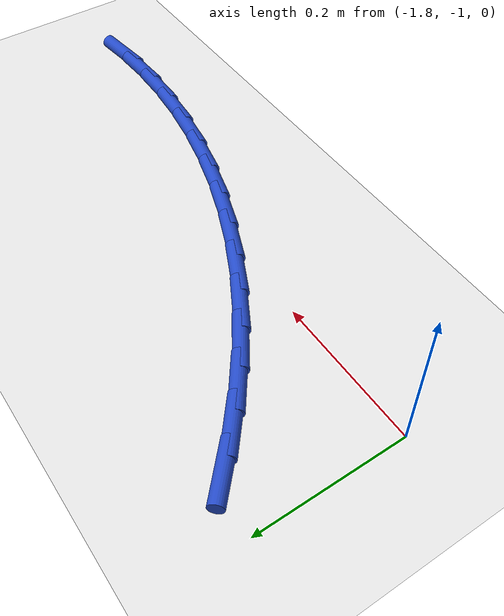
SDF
<sdf version="1.6">
 <world name="default">
  <model name="ground_plane">
   <static>1</static>
   <link name="link">
    <collision name="collision">
     <geometry><plane><normal>0 0 1</normal><size>100 100</size></plane></geometry>
     <surface><friction><ode><mu>100</mu><mu2>50</mu2></ode></friction></surface>
    </collision>
    <visual name="visual">
     <cast_shadows>0</cast_shadows>
     <geometry><plane><normal>0 0 1</normal><size>100 100</size></plane></geometry>
     <material>
      <script><uri>file://media/materials/scripts/gazebo.material</uri><name>Gazebo/WhiteGlow</name></script>
     </material>
    </visual>
   </link>
  </model>
  <model name="line">
   <link name="link_76">
    <pose>-1.7316467337910393 -0.8131080502933558 0.01 0 1.57 -0.7647453448198399</pose>
    <collision name="collision">
     <geometry><cylinder><radius>0.01</radius><length>0.08</length></cylinder></geometry>
    </collision>
    <visual name="visual">
     <material>
      <script><name>Gazebo/Blue</name><uri>file://media/materials/scripts/gazebo.material</uri></script>
     </material>
     <geometry><cylinder><radius>0.01</radius><length>0.08</length></cylinder></geometry>
    </visual>
   </link>
   <link name="link_77">
    <pose>-1.6921844889233182 -0.8509730426562047 0.01 0 1.57 -0.7081240541571656</pose>
    <collision name="collision">
     <geometry><cylinder><radius>0.01</radius><length>0.08</length></cylinder></geometry>
    </collision>
    <visual name="visual">
     <material>
      <script><name>Gazebo/Blue</name><uri>file://media/materials/scripts/gazebo.material</uri></script>
     </material>
     <geometry><cylinder><radius>0.01</radius><length>0.08</length></cylinder></geometry>
    </visual>
   </link>
   <link name="link_78">
    <pose>-1.650654899984337 -0.8865336683933145 0.01 0 1.57 -0.649937392157212</pose>
    <collision name="collision">
     <geometry><cylinder><radius>0.01</radius><length>0.08</length></cylinder></geometry>
    </collision>
    <visual name="visual">
     <material>
      <script><name>Gazebo/Blue</name><uri>file://media/materials/scripts/gazebo.material</uri></script>
     </material>
     <geometry><cylinder><radius>0.01</radius><length>0.08</length></cylinder></geometry>
    </visual>
   </link>
   <link name="link_79">
    <pose>-1.6071314505355125 -0.919616086670821 0.01 0 1.57 -0.5900486102123151</pose>
    <collision name="collision">
     <geometry><cylinder><radius>0.01</radius><length>0.08</length></cylinder></geometry>
    </collision>
    <visual name="visual">
     <material>
      <script><name>Gazebo/Blue</name><uri>file://media/materials/scripts/gazebo.material</uri></script>
     </material>
     <geometry><cylinder><radius>0.01</radius><length>0.08</length></cylinder></geometry>
    </visual>
   </link>
   <link name="link_80">
    <pose>-1.56168762413826 -0.9500464566548606 0.01 0 1.57 -0.5283854800156103</pose>
    <collision name="collision">
     <geometry><cylinder><radius>0.01</radius><length>0.08</length></cylinder></geometry>
    </collision>
    <visual name="visual">
     <material>
      <script><name>Gazebo/Blue</name><uri>file://media/materials/scripts/gazebo.material</uri></script>
     </material>
     <geometry><cylinder><radius>0.01</radius><length>0.08</length></cylinder></geometry>
    </visual>
   </link>
   <link name="link_81">
    <pose>-1.5143983721379017 -0.9776515706433535 0.01 0 1.57 -0.4659485215275925</pose>
    <collision name="collision">
     <geometry><cylinder><radius>0.01</radius><length>0.08</length></cylinder></geometry>
    </collision>
    <visual name="visual">
     <material>
      <script><name>Gazebo/Blue</name><uri>file://media/materials/scripts/gazebo.material</uri></script>
     </material>
     <geometry><cylinder><radius>0.01</radius><length>0.08</length></cylinder></geometry>
    </visual>
   </link>
   <link name="link_82">
    <pose>-1.4654076633248698 -1.0022879917593992 0.01 0 1.57 -0.4039606254554403</pose>
    <collision name="collision">
     <geometry><cylinder><radius>0.01</radius><length>0.08</length></cylinder></geometry>
    </collision>
    <visual name="visual">
     <material>
      <script><name>Gazebo/Blue</name><uri>file://media/materials/scripts/gazebo.material</uri></script>
     </material>
     <geometry><cylinder><radius>0.01</radius><length>0.08</length></cylinder></geometry>
    </visual>
   </link>
   <link name="link_83">
    <pose>-1.4149567276796615 -1.0238542369521464 0.01 0 1.57 -0.3421106340709524</pose>
    <collision name="collision">
     <geometry><cylinder><radius>0.01</radius><length>0.08</length></cylinder></geometry>
    </collision>
    <visual name="visual">
     <material>
      <script><name>Gazebo/Blue</name><uri>file://media/materials/scripts/gazebo.material</uri></script>
     </material>
     <geometry><cylinder><radius>0.01</radius><length>0.08</length></cylinder></geometry>
    </visual>
   </link>
   <link name="link_84">
    <pose>-1.3632941209205331 -1.0422519831436718 0.01 0 1.57 -0.2799678826781423</pose>
    <collision name="collision">
     <geometry><cylinder><radius>0.01</radius><length>0.08</length></cylinder></geometry>
    </collision>
    <visual name="visual">
     <material>
      <script><name>Gazebo/Blue</name><uri>file://media/materials/scripts/gazebo.material</uri></script>
     </material>
     <geometry><cylinder><radius>0.01</radius><length>0.08</length></cylinder></geometry>
    </visual>
   </link>
   <link name="link_85">
    <pose>-1.3106683987657393 -1.0573829072560523 0.01 0 1.57 -0.2171030966495569</pose>
    <collision name="collision">
     <geometry><cylinder><radius>0.01</radius><length>0.08</length></cylinder></geometry>
    </collision>
    <visual name="visual">
     <material>
      <script><name>Gazebo/Blue</name><uri>file://media/materials/scripts/gazebo.material</uri></script>
     </material>
     <geometry><cylinder><radius>0.01</radius><length>0.08</length></cylinder></geometry>
    </visual>
   </link>
   <link name="link_86">
    <pose>-1.257328116933538 -1.0691486862113635 0.01 0 1.57 -0.1530926656639152</pose>
    <collision name="collision">
     <geometry><cylinder><radius>0.01</radius><length>0.08</length></cylinder></geometry>
    </collision>
    <visual name="visual">
     <material>
      <script><name>Gazebo/Blue</name><uri>file://media/materials/scripts/gazebo.material</uri></script>
     </material>
     <geometry><cylinder><radius>0.01</radius><length>0.08</length></cylinder></geometry>
    </visual>
   </link>
   <link name="link_87">
    <pose>-1.2035218311421836 -1.0774509969316828 0.01 0 1.57 -0.08752464613146398</pose>
    <collision name="collision">
     <geometry><cylinder><radius>0.01</radius><length>0.08</length></cylinder></geometry>
    </collision>
    <visual name="visual">
     <material>
      <script><name>Gazebo/Blue</name><uri>file://media/materials/scripts/gazebo.material</uri></script>
     </material>
     <geometry><cylinder><radius>0.01</radius><length>0.08</length></cylinder></geometry>
    </visual>
   </link>
   <link name="link_88">
    <pose>-1.1494980971099331 -1.082191516339086 0.01 0 1.57 -0.020007562489210155</pose>
    <collision name="collision">
     <geometry><cylinder><radius>0.01</radius><length>0.08</length></cylinder></geometry>
    </collision>
    <visual name="visual">
     <material>
      <script><name>Gazebo/Blue</name><uri>file://media/materials/scripts/gazebo.material</uri></script>
     </material>
     <geometry><cylinder><radius>0.01</radius><length>0.08</length></cylinder></geometry>
    </visual>
   </link>
   <link name="link_89">
    <pose>-1.095505470555041 -1.0832719213556505 0.01 0 1.57 0.049508144726397724</pose>
    <collision name="collision">
     <geometry><cylinder><radius>0.01</radius><length>0.08</length></cylinder></geometry>
    </collision>
    <visual name="visual">
     <material>
      <script><name>Gazebo/Blue</name><uri>file://media/materials/scripts/gazebo.material</uri></script>
     </material>
     <geometry><cylinder><radius>0.01</radius><length>0.08</length></cylinder></geometry>
    </visual>
   </link>
   <link name="link_90">
    <pose>-1.0417828576909136 -1.0806100392997604 0.01 0 1.57 0.11765260416398769</pose>
    <collision name="collision">
     <geometry><cylinder><radius>0.01</radius><length>0.08</length></cylinder></geometry>
    </collision>
    <visual name="visual">
     <material>
      <script><name>Gazebo/Blue</name><uri>file://media/materials/scripts/gazebo.material</uri></script>
     </material>
     <geometry><cylinder><radius>0.01</radius><length>0.08</length></cylinder></geometry>
    </visual>
   </link>
  </model>
 </world>
</sdf>
